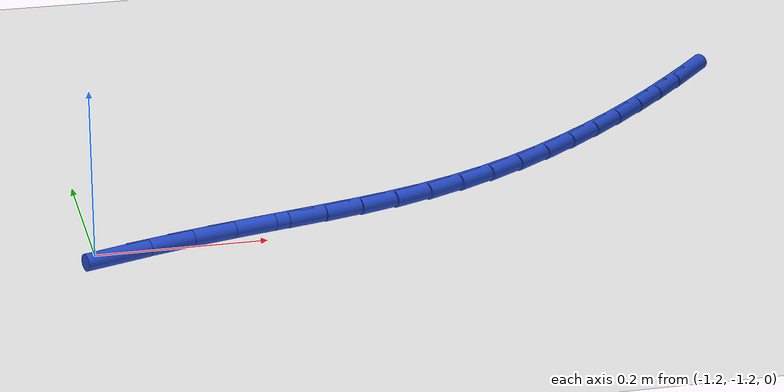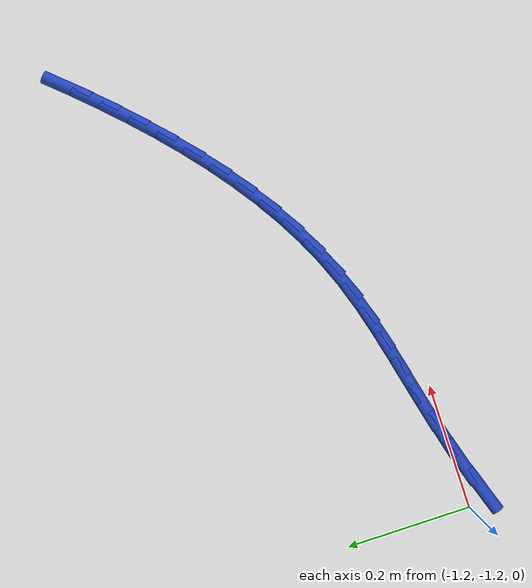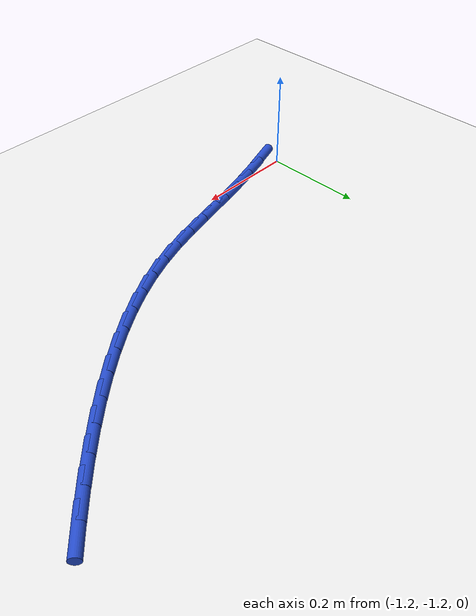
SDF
<sdf version="1.6">
 <world name="default">
  <model name="ground_plane">
   <static>1</static>
   <link name="link">
    <collision name="collision">
     <geometry><plane><normal>0 0 1</normal><size>100 100</size></plane></geometry>
     <surface><friction><ode><mu>100</mu><mu2>50</mu2></ode></friction></surface>
    </collision>
    <visual name="visual">
     <cast_shadows>0</cast_shadows>
     <geometry><plane><normal>0 0 1</normal><size>100 100</size></plane></geometry>
     <material>
      <script><uri>file://media/materials/scripts/gazebo.material</uri><name>Gazebo/WhiteGlow</name></script>
     </material>
    </visual>
   </link>
  </model>
  <model name="line">
   <link name="link_122">
    <pose>-1.1775868706022377 -1.2264655468509404 0.01 0 1.57 0.325046436536888</pose>
    <collision name="collision">
     <geometry><cylinder><radius>0.01</radius><length>0.08</length></cylinder></geometry>
    </collision>
    <visual name="visual">
     <material>
      <script><name>Gazebo/Blue</name><uri>file://media/materials/scripts/gazebo.material</uri></script>
     </material>
     <geometry><cylinder><radius>0.01</radius><length>0.08</length></cylinder></geometry>
    </visual>
   </link>
   <link name="link_123">
    <pose>-1.1256961098371905 -1.2089783882041427 0.01 0 1.57 0.28707993887389766</pose>
    <collision name="collision">
     <geometry><cylinder><radius>0.01</radius><length>0.08</length></cylinder></geometry>
    </collision>
    <visual name="visual">
     <material>
      <script><name>Gazebo/Blue</name><uri>file://media/materials/scripts/gazebo.material</uri></script>
     </material>
     <geometry><cylinder><radius>0.01</radius><length>0.08</length></cylinder></geometry>
    </visual>
   </link>
   <link name="link_124">
    <pose>-1.0752428444193713 -1.1940827955287843 0.01 0 1.57 0.2539225683947982</pose>
    <collision name="collision">
     <geometry><cylinder><radius>0.01</radius><length>0.08</length></cylinder></geometry>
    </collision>
    <visual name="visual">
     <material>
      <script><name>Gazebo/Blue</name><uri>file://media/materials/scripts/gazebo.material</uri></script>
     </material>
     <geometry><cylinder><radius>0.01</radius><length>0.08</length></cylinder></geometry>
    </visual>
   </link>
   <link name="link_125">
    <pose>-1.0262799602836246 -1.1813757299649326 0.01 0 1.57 0.2343097562845196</pose>
    <collision name="collision">
     <geometry><cylinder><radius>0.01</radius><length>0.08</length></cylinder></geometry>
    </collision>
    <visual name="visual">
     <material>
      <script><name>Gazebo/Blue</name><uri>file://media/materials/scripts/gazebo.material</uri></script>
     </material>
     <geometry><cylinder><radius>0.01</radius><length>0.08</length></cylinder></geometry>
    </visual>
   </link>
   <link name="link_126">
    <pose>-0.9787073667403254 -1.1700204366967586 0.01 0 1.57 0.23008954553364006</pose>
    <collision name="collision">
     <geometry><cylinder><radius>0.01</radius><length>0.08</length></cylinder></geometry>
    </collision>
    <visual name="visual">
     <material>
      <script><name>Gazebo/Blue</name><uri>file://media/materials/scripts/gazebo.material</uri></script>
     </material>
     <geometry><cylinder><radius>0.01</radius><length>0.08</length></cylinder></geometry>
    </visual>
   </link>
   <link name="link_127">
    <pose>-0.9324246612289528 -1.1591792766989302 0.01 0 1.57 0.24270988453817394</pose>
    <collision name="collision">
     <geometry><cylinder><radius>0.01</radius><length>0.08</length></cylinder></geometry>
    </collision>
    <visual name="visual">
     <material>
      <script><name>Gazebo/Blue</name><uri>file://media/materials/scripts/gazebo.material</uri></script>
     </material>
     <geometry><cylinder><radius>0.01</radius><length>0.08</length></cylinder></geometry>
    </visual>
   </link>
   <link name="link_128">
    <pose>-0.8873314411889826 -1.1480146109461136 0.01 0 1.57 0.27310673493343673</pose>
    <collision name="collision">
     <geometry><cylinder><radius>0.01</radius><length>0.08</length></cylinder></geometry>
    </collision>
    <visual name="visual">
     <material>
      <script><name>Gazebo/Blue</name><uri>file://media/materials/scripts/gazebo.material</uri></script>
     </material>
     <geometry><cylinder><radius>0.01</radius><length>0.08</length></cylinder></geometry>
    </visual>
   </link>
   <link name="link_129">
    <pose>-0.8433273040598914 -1.1356888004129755 0.01 0 1.57 0.3214598835395695</pose>
    <collision name="collision">
     <geometry><cylinder><radius>0.01</radius><length>0.08</length></cylinder></geometry>
    </collision>
    <visual name="visual">
     <material>
      <script><name>Gazebo/Blue</name><uri>file://media/materials/scripts/gazebo.material</uri></script>
     </material>
     <geometry><cylinder><radius>0.01</radius><length>0.08</length></cylinder></geometry>
    </visual>
   </link>
   <link name="link_130">
    <pose>-0.8003118472811558 -1.121364206074182 0.01 0 1.57 0.3857144920444325</pose>
    <collision name="collision">
     <geometry><cylinder><radius>0.01</radius><length>0.08</length></cylinder></geometry>
    </collision>
    <visual name="visual">
     <material>
      <script><name>Gazebo/Blue</name><uri>file://media/materials/scripts/gazebo.material</uri></script>
     </material>
     <geometry><cylinder><radius>0.01</radius><length>0.08</length></cylinder></geometry>
    </visual>
   </link>
   <link name="link_131">
    <pose>-0.7581894335435205 -1.1042602281082532 0.01 0 1.57 0.4520925870257861</pose>
    <collision name="collision">
     <geometry><cylinder><radius>0.01</radius><length>0.08</length></cylinder></geometry>
    </collision>
    <visual name="visual">
     <material>
      <script><name>Gazebo/Blue</name><uri>file://media/materials/scripts/gazebo.material</uri></script>
     </material>
     <geometry><cylinder><radius>0.01</radius><length>0.08</length></cylinder></geometry>
    </visual>
   </link>
   <link name="link_132">
    <pose>-0.716916231069484 -1.0842163696263623 0.01 0 1.57 0.5127352085388869</pose>
    <collision name="collision">
     <geometry><cylinder><radius>0.01</radius><length>0.08</length></cylinder></geometry>
    </collision>
    <visual name="visual">
     <material>
      <script><name>Gazebo/Blue</name><uri>file://media/materials/scripts/gazebo.material</uri></script>
     </material>
     <geometry><cylinder><radius>0.01</radius><length>0.08</length></cylinder></geometry>
    </visual>
   </link>
   <link name="link_133">
    <pose>-0.6764802014902653 -1.0614526951454215 0.01 0 1.57 0.5676498647627419</pose>
    <collision name="collision">
     <geometry><cylinder><radius>0.01</radius><length>0.08</length></cylinder></geometry>
    </collision>
    <visual name="visual">
     <material>
      <script><name>Gazebo/Blue</name><uri>file://media/materials/scripts/gazebo.material</uri></script>
     </material>
     <geometry><cylinder><radius>0.01</radius><length>0.08</length></cylinder></geometry>
    </visual>
   </link>
   <link name="link_134">
    <pose>-0.6368697677030534 -1.036194790453331 0.01 0 1.57 0.6170818341971619</pose>
    <collision name="collision">
     <geometry><cylinder><radius>0.01</radius><length>0.08</length></cylinder></geometry>
    </collision>
    <visual name="visual">
     <material>
      <script><name>Gazebo/Blue</name><uri>file://media/materials/scripts/gazebo.material</uri></script>
     </material>
     <geometry><cylinder><radius>0.01</radius><length>0.08</length></cylinder></geometry>
    </visual>
   </link>
   <link name="link_135">
    <pose>-0.5980733526050364 -1.0086682413379906 0.01 0 1.57 0.6613504106536027</pose>
    <collision name="collision">
     <geometry><cylinder><radius>0.01</radius><length>0.08</length></cylinder></geometry>
    </collision>
    <visual name="visual">
     <material>
      <script><name>Gazebo/Blue</name><uri>file://media/materials/scripts/gazebo.material</uri></script>
     </material>
     <geometry><cylinder><radius>0.01</radius><length>0.08</length></cylinder></geometry>
    </visual>
   </link>
   <link name="link_136">
    <pose>-0.5600793790934022 -0.9790986335872996 0.01 0 1.57 0.7008066321366073</pose>
    <collision name="collision">
     <geometry><cylinder><radius>0.01</radius><length>0.08</length></cylinder></geometry>
    </collision>
    <visual name="visual">
     <material>
      <script><name>Gazebo/Blue</name><uri>file://media/materials/scripts/gazebo.material</uri></script>
     </material>
     <geometry><cylinder><radius>0.01</radius><length>0.08</length></cylinder></geometry>
    </visual>
   </link>
   <link name="link_137">
    <pose>-0.5228762700653404 -0.9477115529891589 0.01 0 1.57 0.7358031950976358</pose>
    <collision name="collision">
     <geometry><cylinder><radius>0.01</radius><length>0.08</length></cylinder></geometry>
    </collision>
    <visual name="visual">
     <material>
      <script><name>Gazebo/Blue</name><uri>file://media/materials/scripts/gazebo.material</uri></script>
     </material>
     <geometry><cylinder><radius>0.01</radius><length>0.08</length></cylinder></geometry>
    </visual>
   </link>
   <link name="link_138">
    <pose>-0.48645244841803853 -0.9147325853314674 0.01 0 1.57 0.7666744004359629</pose>
    <collision name="collision">
     <geometry><cylinder><radius>0.01</radius><length>0.08</length></cylinder></geometry>
    </collision>
    <visual name="visual">
     <material>
      <script><name>Gazebo/Blue</name><uri>file://media/materials/scripts/gazebo.material</uri></script>
     </material>
     <geometry><cylinder><radius>0.01</radius><length>0.08</length></cylinder></geometry>
    </visual>
   </link>
   <link name="link_139">
    <pose>-0.4507963370486852 -0.8803873164021254 0.01 0 1.57 0.7937235830962006</pose>
    <collision name="collision">
     <geometry><cylinder><radius>0.01</radius><length>0.08</length></cylinder></geometry>
    </collision>
    <visual name="visual">
     <material>
      <script><name>Gazebo/Blue</name><uri>file://media/materials/scripts/gazebo.material</uri></script>
     </material>
     <geometry><cylinder><radius>0.01</radius><length>0.08</length></cylinder></geometry>
    </visual>
   </link>
   <link name="link_140">
    <pose>-0.41589635885446885 -0.8449013319890325 0.01 0 1.57 0.8172156851120664</pose>
    <collision name="collision">
     <geometry><cylinder><radius>0.01</radius><length>0.08</length></cylinder></geometry>
    </collision>
    <visual name="visual">
     <material>
      <script><name>Gazebo/Blue</name><uri>file://media/materials/scripts/gazebo.material</uri></script>
     </material>
     <geometry><cylinder><radius>0.01</radius><length>0.08</length></cylinder></geometry>
    </visual>
   </link>
   <link name="link_141">
    <pose>-0.38174093673257703 -0.8085002178800875 0.01 0 1.57 0.8373730604851363</pose>
    <collision name="collision">
     <geometry><cylinder><radius>0.01</radius><length>0.08</length></cylinder></geometry>
    </collision>
    <visual name="visual">
     <material>
      <script><name>Gazebo/Blue</name><uri>file://media/materials/scripts/gazebo.material</uri></script>
     </material>
     <geometry><cylinder><radius>0.01</radius><length>0.08</length></cylinder></geometry>
    </visual>
   </link>
  </model>
 </world>
</sdf>
